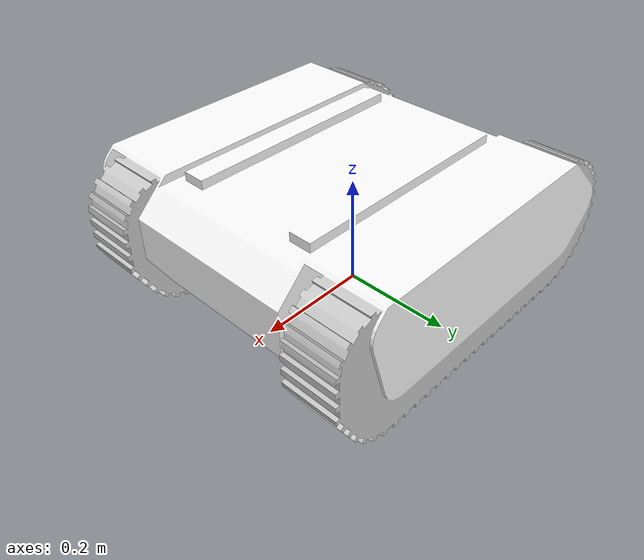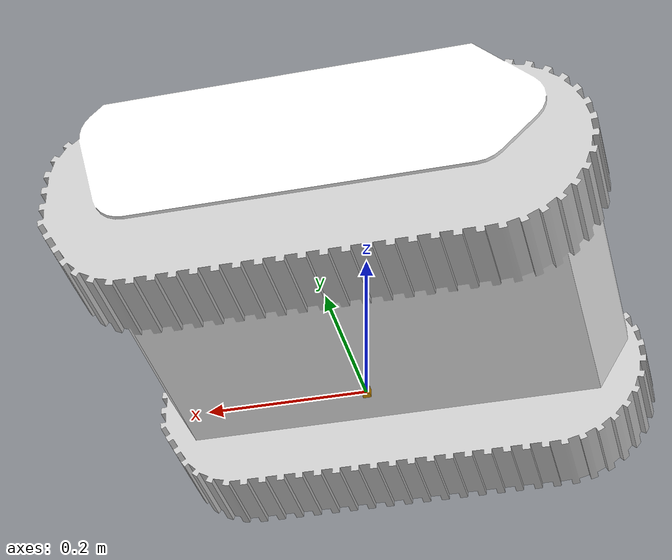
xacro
<?xml version="1.0" encoding="utf-8"?>
<robot  name="bunker_description" xmlns:xacro="http://www.ros.org/wiki/xacro">

    <!-- Base footprint -->
    <link name="base_footprint">
        <visual>
            <origin
                    xyz="0 0 0"
                    rpy="0 0 0" />
            <geometry>
                 <box size="0.01 0.01 0.01"/>
            </geometry>
        </visual>
        <collision>
            <origin
                    xyz="0 0 0"
                    rpy="0 0 0" />
            <geometry>
                 <box size="0.01 0.01 0.01"/>
            </geometry>
        </collision>
    </link>

  <link
    name="base_link">
    <visual>
      <origin
        xyz="0 0 0"
        rpy="0 0 0" />
      <geometry>
        <mesh
          filename="package://bunker_description/meshes/qcr_bunker.dae" scale="0.001 0.001 0.001" />
      </geometry>
    </visual>
    <collision>
      <origin
        xyz="0 0 0"
        rpy="0 0 0" />
      <geometry>
        <mesh
          filename="package://bunker_description/meshes/qcr_bunker.dae" scale="0.001 0.001 0.001" />
      </geometry>
    </collision>
  </link>

    <joint name="footprint_joint" type="fixed">
        <origin xyz="0 0 0.1575" rpy="0 0 0" />
        <parent link="base_footprint" />
        <child link="base_link" />
    </joint>

</robot>
